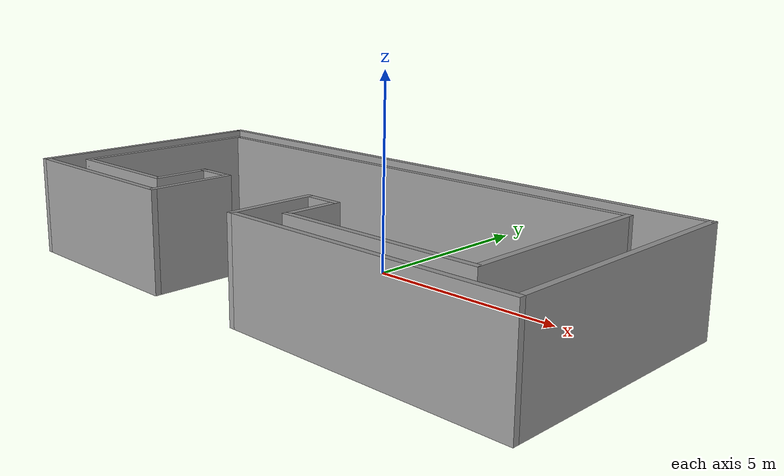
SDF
<?xml version='1.0'?>
<sdf version='1.7'>
  <model name='Ushape2025'>
    <pose>0.075 -1.735 0 0 -0 0</pose>
    <link name='Wall_1'>
      <collision name='Wall_1_Collision'>
        <geometry>
          <box>
            <size>2.25 0.15 2.5</size>
          </box>
        </geometry>
        <pose>0 0 1.25 0 -0 0</pose>
      </collision>
      <visual name='Wall_1_Visual'>
        <pose>0 0 1.25 0 -0 0</pose>
        <geometry>
          <box>
            <size>2.25 0.15 2.5</size>
          </box>
        </geometry>
        <material>
          <script>
            <uri>file://media/materials/scripts/gazebo.material</uri>
            <name>Gazebo/Grey</name>
          </script>
          <ambient>1 1 1 1</ambient>
        </material>
        <meta>
          <layer>0</layer>
        </meta>
      </visual>
      <pose>-2.575 -2.125 0 0 -0 -1.5708</pose>
    </link>
    <link name='Wall_10'>
      <collision name='Wall_10_Collision'>
        <geometry>
          <box>
            <size>1.5 0.15 2.5</size>
          </box>
        </geometry>
        <pose>0 0 1.25 0 -0 0</pose>
      </collision>
      <visual name='Wall_10_Visual'>
        <pose>0 0 1.25 0 -0 0</pose>
        <geometry>
          <box>
            <size>1.5 0.15 2.5</size>
          </box>
        </geometry>
        <material>
          <script>
            <uri>file://media/materials/scripts/gazebo.material</uri>
            <name>Gazebo/Grey</name>
          </script>
          <ambient>1 1 1 1</ambient>
        </material>
        <meta>
          <layer>0</layer>
        </meta>
      </visual>
      <pose>1.175 -1.75 0 0 -0 -1.5708</pose>
    </link>
    <link name='Wall_11'>
      <collision name='Wall_11_Collision'>
        <geometry>
          <box>
            <size>5 0.15 2.5</size>
          </box>
        </geometry>
        <pose>0 0 1.25 0 -0 0</pose>
      </collision>
      <visual name='Wall_11_Visual'>
        <pose>0 0 1.25 0 -0 0</pose>
        <geometry>
          <box>
            <size>5 0.15 2.5</size>
          </box>
        </geometry>
        <material>
          <script>
            <uri>file://media/materials/scripts/gazebo.material</uri>
            <name>Gazebo/Grey</name>
          </script>
          <ambient>1 1 1 1</ambient>
        </material>
        <meta>
          <layer>0</layer>
        </meta>
      </visual>
      <pose>3.6 -2.425 0 0 -0 0</pose>
    </link>
    <link name='Wall_12'>
      <collision name='Wall_12_Collision'>
        <geometry>
          <box>
            <size>5 0.15 2.5</size>
          </box>
        </geometry>
        <pose>0 0 1.25 0 -0 0</pose>
      </collision>
      <visual name='Wall_12_Visual'>
        <pose>0 0 1.25 0 -0 0</pose>
        <geometry>
          <box>
            <size>5 0.15 2.5</size>
          </box>
        </geometry>
        <material>
          <script>
            <uri>file://media/materials/scripts/gazebo.material</uri>
            <name>Gazebo/Grey</name>
          </script>
          <ambient>1 1 1 1</ambient>
        </material>
        <meta>
          <layer>0</layer>
        </meta>
      </visual>
      <pose>6.025 0 0 0 -0 1.5708</pose>
    </link>
    <link name='Wall_13'>
      <collision name='Wall_13_Collision'>
        <geometry>
          <box>
            <size>12.75 0.15 2.5</size>
          </box>
        </geometry>
        <pose>0 0 1.25 0 -0 0</pose>
      </collision>
      <visual name='Wall_13_Visual'>
        <pose>0 0 1.25 0 -0 0</pose>
        <geometry>
          <box>
            <size>12.75 0.15 2.5</size>
          </box>
        </geometry>
        <material>
          <script>
            <uri>file://media/materials/scripts/gazebo.material</uri>
            <name>Gazebo/Grey</name>
          </script>
          <ambient>1 1 1 1</ambient>
        </material>
        <meta>
          <layer>0</layer>
        </meta>
      </visual>
      <pose>-0.275 2.425 0 0 -0 3.14159</pose>
    </link>
    <link name='Wall_14'>
      <collision name='Wall_14_Collision'>
        <geometry>
          <box>
            <size>5 0.15 2.5</size>
          </box>
        </geometry>
        <pose>0 0 1.25 0 -0 0</pose>
      </collision>
      <visual name='Wall_14_Visual'>
        <pose>0 0 1.25 0 -0 0</pose>
        <geometry>
          <box>
            <size>5 0.15 2.5</size>
          </box>
        </geometry>
        <material>
          <script>
            <uri>file://media/materials/scripts/gazebo.material</uri>
            <name>Gazebo/Grey</name>
          </script>
          <ambient>1 1 1 1</ambient>
        </material>
        <meta>
          <layer>0</layer>
        </meta>
      </visual>
      <pose>-6.575 0 0 0 -0 -1.5708</pose>
    </link>
    <link name='Wall_15'>
      <collision name='Wall_15_Collision'>
        <geometry>
          <box>
            <size>3.25 0.15 2.5</size>
          </box>
        </geometry>
        <pose>0 0 1.25 0 -0 0</pose>
      </collision>
      <visual name='Wall_15_Visual'>
        <pose>0 0 1.25 0 -0 0</pose>
        <geometry>
          <box>
            <size>3.25 0.15 2.5</size>
          </box>
        </geometry>
        <material>
          <script>
            <uri>file://media/materials/scripts/gazebo.material</uri>
            <name>Gazebo/Grey</name>
          </script>
          <ambient>1 1 1 1</ambient>
        </material>
        <meta>
          <layer>0</layer>
        </meta>
      </visual>
      <pose>-5.025 -2.425 0 0 -0 0</pose>
    </link>
    <link name='Wall_16'>
      <collision name='Wall_16_Collision'>
        <geometry>
          <box>
            <size>1.5 0.15 2.5</size>
          </box>
        </geometry>
        <pose>0 0 1.25 0 -0 0</pose>
      </collision>
      <visual name='Wall_16_Visual'>
        <pose>0 0 1.25 0 -0 0</pose>
        <geometry>
          <box>
            <size>1.5 0.15 2.5</size>
          </box>
        </geometry>
        <material>
          <script>
            <uri>file://media/materials/scripts/gazebo.material</uri>
            <name>Gazebo/Grey</name>
          </script>
          <ambient>1 1 1 1</ambient>
        </material>
        <meta>
          <layer>0</layer>
        </meta>
      </visual>
      <pose>-3.475 -1.75 0 0 -0 1.5708</pose>
    </link>
    <link name='Wall_17'>
      <collision name='Wall_17_Collision'>
        <geometry>
          <box>
            <size>1.05 0.15 2.5</size>
          </box>
        </geometry>
        <pose>0 0 1.25 0 -0 0</pose>
      </collision>
      <visual name='Wall_17_Visual'>
        <pose>0 0 1.25 0 -0 0</pose>
        <geometry>
          <box>
            <size>1.05 0.15 2.5</size>
          </box>
        </geometry>
        <material>
          <script>
            <uri>file://media/materials/scripts/gazebo.material</uri>
            <name>Gazebo/Grey</name>
          </script>
          <ambient>1 1 1 1</ambient>
        </material>
        <meta>
          <layer>0</layer>
        </meta>
      </visual>
      <pose>-3.025 -1.075 0 0 -0 0</pose>
    </link>
    <link name='Wall_2'>
      <collision name='Wall_2_Collision'>
        <geometry>
          <box>
            <size>5 0.15 2.5</size>
          </box>
        </geometry>
        <pose>0 0 1.25 0 -0 0</pose>
      </collision>
      <visual name='Wall_2_Visual'>
        <pose>0 0 1.25 0 -0 0</pose>
        <geometry>
          <box>
            <size>5 0.15 2.5</size>
          </box>
        </geometry>
        <material>
          <script>
            <uri>file://media/materials/scripts/gazebo.material</uri>
            <name>Gazebo/Grey</name>
          </script>
          <ambient>1 1 1 1</ambient>
        </material>
        <meta>
          <layer>0</layer>
        </meta>
      </visual>
      <pose>-5 -3.175 0 0 -0 3.14159</pose>
    </link>
    <link name='Wall_4'>
      <collision name='Wall_4_Collision'>
        <geometry>
          <box>
            <size>6.5 0.15 2.5</size>
          </box>
        </geometry>
        <pose>0 0 1.25 0 -0 0</pose>
      </collision>
      <visual name='Wall_4_Visual'>
        <pose>0 0 1.25 0 -0 0</pose>
        <geometry>
          <box>
            <size>6.5 0.15 2.5</size>
          </box>
        </geometry>
        <material>
          <script>
            <uri>file://media/materials/scripts/gazebo.material</uri>
            <name>Gazebo/Grey</name>
          </script>
          <ambient>1 1 1 1</ambient>
        </material>
        <meta>
          <layer>0</layer>
        </meta>
      </visual>
      <pose>-7.425 0 0 0 -0 1.5708</pose>
    </link>
    <link name='Wall_5'>
      <collision name='Wall_5_Collision'>
        <geometry>
          <box>
            <size>15 0.15 2.5</size>
          </box>
        </geometry>
        <pose>0 0 1.25 0 -0 0</pose>
      </collision>
      <visual name='Wall_5_Visual'>
        <pose>0 0 1.25 0 -0 0</pose>
        <geometry>
          <box>
            <size>15 0.15 2.5</size>
          </box>
        </geometry>
        <material>
          <script>
            <uri>file://media/materials/scripts/gazebo.material</uri>
            <name>Gazebo/Grey</name>
          </script>
          <ambient>1 1 1 1</ambient>
        </material>
        <meta>
          <layer>0</layer>
        </meta>
      </visual>
      <pose>-0 3.175 0 0 -0 0</pose>
    </link>
    <link name='Wall_6'>
      <collision name='Wall_6_Collision'>
        <geometry>
          <box>
            <size>6.5 0.15 2.5</size>
          </box>
        </geometry>
        <pose>0 0 1.25 0 -0 0</pose>
      </collision>
      <visual name='Wall_6_Visual'>
        <pose>0 0 1.25 0 -0 0</pose>
        <geometry>
          <box>
            <size>6.5 0.15 2.5</size>
          </box>
        </geometry>
        <material>
          <script>
            <uri>file://media/materials/scripts/gazebo.material</uri>
            <name>Gazebo/Grey</name>
          </script>
          <ambient>1 1 1 1</ambient>
        </material>
        <meta>
          <layer>0</layer>
        </meta>
      </visual>
      <pose>7.425 0 0 0 -0 -1.5708</pose>
    </link>
    <link name='Wall_7'>
      <collision name='Wall_7_Collision'>
        <geometry>
          <box>
            <size>7.25 0.15 2.5</size>
          </box>
        </geometry>
        <pose>0 0 1.25 0 -0 0</pose>
      </collision>
      <visual name='Wall_7_Visual'>
        <pose>0 0 1.25 0 -0 0</pose>
        <geometry>
          <box>
            <size>7.25 0.15 2.5</size>
          </box>
        </geometry>
        <material>
          <script>
            <uri>file://media/materials/scripts/gazebo.material</uri>
            <name>Gazebo/Grey</name>
          </script>
          <ambient>1 1 1 1</ambient>
        </material>
        <meta>
          <layer>0</layer>
        </meta>
      </visual>
      <pose>3.875 -3.175 0 0 -0 3.14159</pose>
    </link>
    <link name='Wall_8'>
      <collision name='Wall_8_Collision'>
        <geometry>
          <box>
            <size>2.25 0.15 2.5</size>
          </box>
        </geometry>
        <pose>0 0 1.25 0 -0 0</pose>
      </collision>
      <visual name='Wall_8_Visual'>
        <pose>0 0 1.25 0 -0 0</pose>
        <geometry>
          <box>
            <size>2.25 0.15 2.5</size>
          </box>
        </geometry>
        <material>
          <script>
            <uri>file://media/materials/scripts/gazebo.material</uri>
            <name>Gazebo/Grey</name>
          </script>
          <ambient>1 1 1 1</ambient>
        </material>
        <meta>
          <layer>0</layer>
        </meta>
      </visual>
      <pose>0.325 -2.125 0 0 -0 1.5708</pose>
    </link>
    <link name='Wall_9'>
      <collision name='Wall_9_Collision'>
        <geometry>
          <box>
            <size>1 0.15 2.5</size>
          </box>
        </geometry>
        <pose>0 0 1.25 0 -0 0</pose>
      </collision>
      <visual name='Wall_9_Visual'>
        <pose>0 0 1.25 0 -0 0</pose>
        <geometry>
          <box>
            <size>1 0.15 2.5</size>
          </box>
        </geometry>
        <material>
          <script>
            <uri>file://media/materials/scripts/gazebo.material</uri>
            <name>Gazebo/Grey</name>
          </script>
          <ambient>1 1 1 1</ambient>
        </material>
        <meta>
          <layer>0</layer>
        </meta>
      </visual>
      <pose>0.75 -1.075 0 0 -0 0</pose>
    </link>
    <static>1</static>
  </model>
</sdf>
